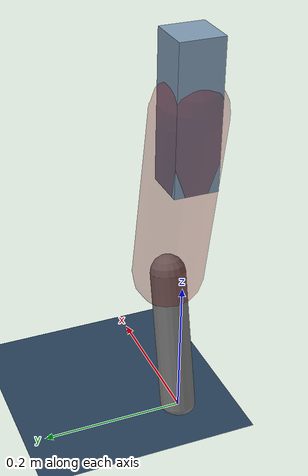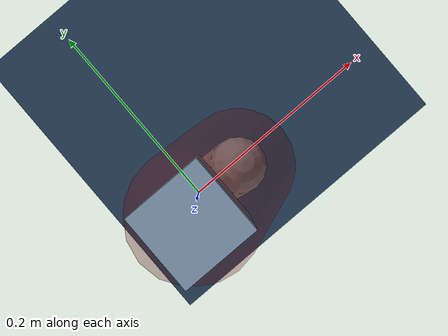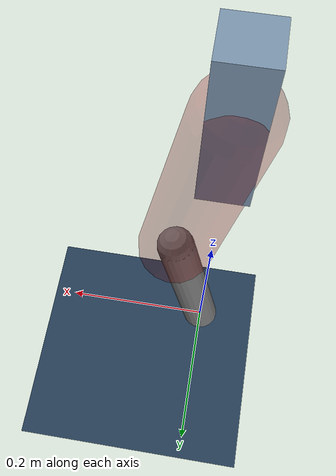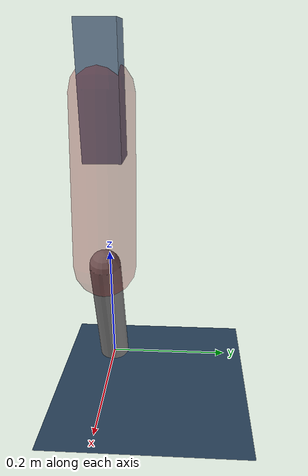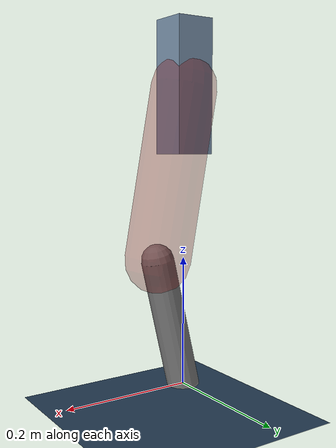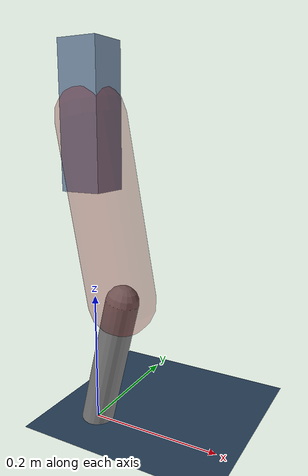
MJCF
<mujoco model="Hopper2D">
	<compiler inertiafromgeom="true" angle="radian" />
	<option timestep="0.001" integrator="implicit" cone="elliptic" solver="Newton" tolerance="1e-10" />

	<default>
		<geom contype="1" conaffinity="1" condim="3" friction="2 0.005 0.0001" solref="0.005 1" />
		<joint limited="true" damping="0.1" />
	</default>

	<asset>
		<texture name="skybox" type="skybox" builtin="gradient" rgb1=".4 .6 .8" rgb2="0 0 0" width="800" height="800" />
		<texture name="grid" type="2d" builtin="checker" rgb1=".1 .2 .3" rgb2=".2 .3 .4" width="300" height="300" mark="edge" markrgb=".2 .3 .4" />
		<material name="ground" texture="grid" texrepeat="1 1" texuniform="true" reflectance="0.1" />
		<material name="leg" rgba="0.5 0.6 0.7 1" />
	</asset>

	<worldbody>

		<geom name="floor" type="plane" size="5 5 0.25" material="ground" />

		<light directional="false" diffuse="0.8 0.8 0.8" specular="0.3 0.3 0.3" pos="0 0 2" dir="0 0 -1" />
		<light mode="targetbodycom" target="base" directional="false" diffuse="0.8 0.8 0.8" specular="0.3 0.3 0.3" pos="0 0 2" dir="0 0 -1" />

		<camera name="fixed" pos="0 -2 1" xyaxes="1 0 0 0 0 1" />
		<camera name="tracking" mode="trackcom" pos="0 -3 1" />

		<body name="root" pos="0 0 0.4591964057579221">
			<joint name="slide_x" type="slide" axis="1 0 0" range="-100 100" />
			<joint name="slide_z" type="slide" axis="0 0 1" range="0 10" />

			<body name="base" pos="0 0 0">
				<geom name="torso" type="box" size="0.03 0.03 0.1" mass="4.088" material="leg" />

				<body name="link1" pos="0 0 0" euler="0 1.3887108019471532 0">
					<joint type="hinge" axis="0 -1 0" pos="0 0 0" name="hinge1" limited="true" range="-3.14 3.14" stiffness="0" damping="0.1" />
					<geom name="thigh" type="capsule" fromto="0 0 0 0.26387763254059365 0 0" size="0.05" rgba="0.5 0 0 0.3" mass="0.8925818446055435" />

					<body name="link2" pos="0.26387763254059365 0 0" euler="0 0.41696629751676195 0">
						<joint type="hinge" axis="0 -1 0" pos="0 0 0" name="hinge2" limited="true" range="-3.14 3.14" stiffness="0" damping="0.1" />
						<geom name="shank" type="capsule" fromto="0 0 0 0.20531877321732844 0 0" size="0.025" mass="0.40535501857386275" />

					</body>
				</body>
			</body>
		</body>
	</worldbody>

	<actuator>
		<motor name="torque1" joint="hinge1" ctrlrange="-218.609596588622 218.609596588622" ctrllimited="true" gear="1" />
		<motor name="torque2" joint="hinge2" ctrlrange="-131.31805567330906 131.31805567330906" ctrllimited="true" gear="1" />
	</actuator>
</mujoco>
